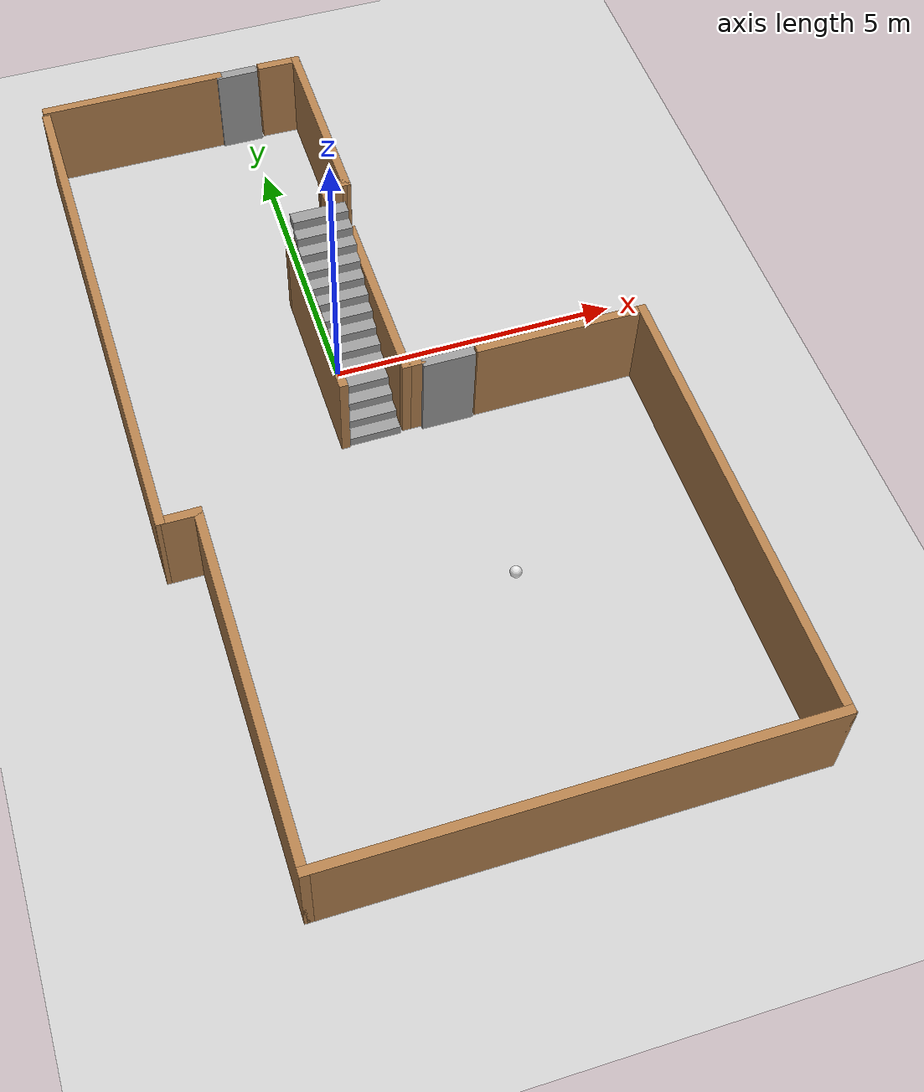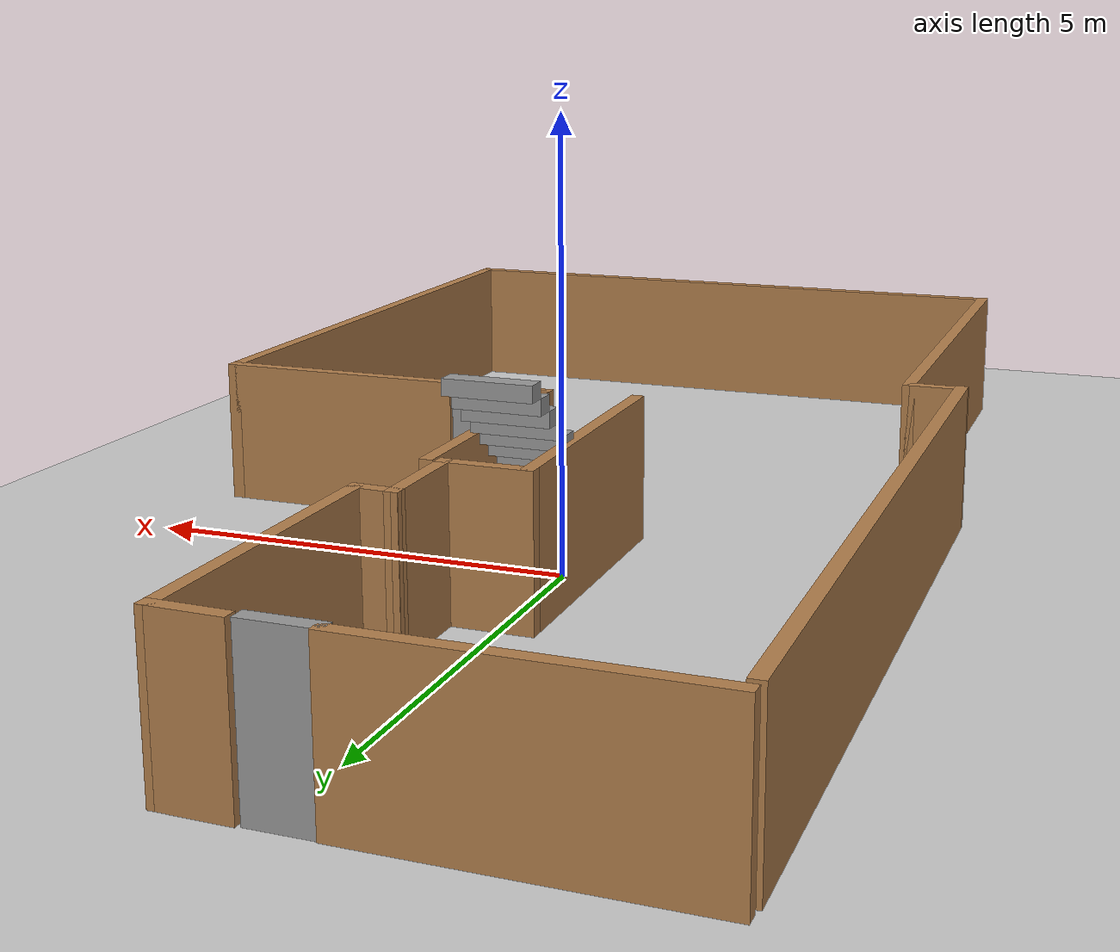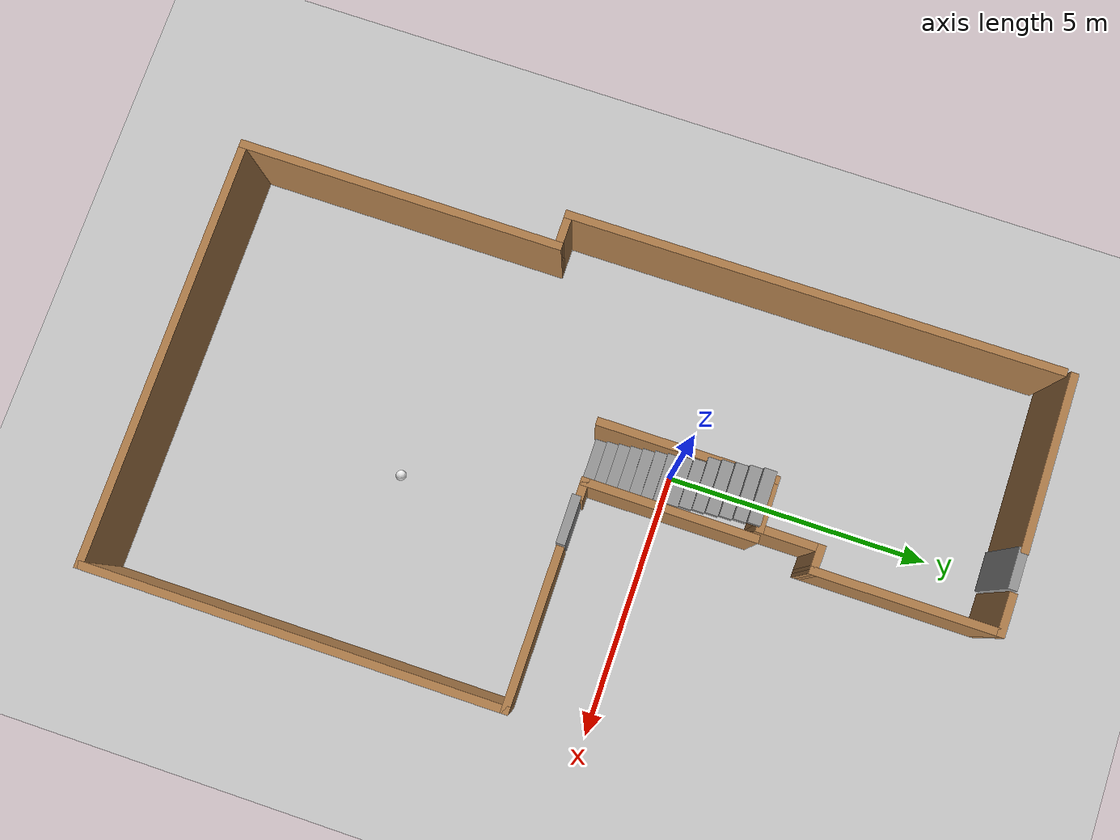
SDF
<sdf version="1.6">
 <world name="default">
  <light name="sun" type="directional">
   <pose>0 0 10 0 -0 0</pose>
   <diffuse>0.8 0.8 0.8 1</diffuse>
   <specular>0.2 0.2 0.2 1</specular>
   <attenuation>
    <range>1000</range>
    <constant>0.9</constant>
    <linear>0.01</linear>
    <quadratic>0.001</quadratic>
   </attenuation>
   <direction>-0.5 0.1 -0.9</direction>
  </light>
  <model name="ground_plane">
   <static>1</static>
   <link name="link">
    <collision name="collision">
     <geometry><plane><normal>0 0 1</normal><size>100 100</size></plane></geometry>
     <surface><friction><ode><mu>100</mu><mu2>50</mu2></ode></friction></surface>
    </collision>
    <visual name="visual">
     <cast_shadows>0</cast_shadows>
     <geometry><plane><normal>0 0 1</normal><size>100 100</size></plane></geometry>
     <material>
      <script><uri>file://media/materials/scripts/gazebo.material</uri><name>Gazebo/Grey</name></script>
     </material>
    </visual>
   </link>
  </model>
  <gravity>0 0 -9.8</gravity>
  <magnetic_field>6e-06 2.3e-05 -4.2e-05</magnetic_field>
  <atmosphere type="adiabatic"/>
  <physics name="default_physics" default="0" type="ode">
   <max_step_size>0.001</max_step_size>
   <real_time_factor>1</real_time_factor>
   <real_time_update_rate>1000</real_time_update_rate>
  </physics>
  <scene><ambient>0.4 0.4 0.4 1</ambient><background>0.7 0.7 0.7 1</background><shadows>1</shadows></scene>
  <spherical_coordinates>
   <surface_model>EARTH_WGS84</surface_model>
   <latitude_deg>0</latitude_deg>
   <longitude_deg>0</longitude_deg>
   <elevation>0</elevation>
   <heading_deg>0</heading_deg>
  </spherical_coordinates>
  <model name="fungeon">
   <pose>0.567252 -1.53181 0 0 -0 0</pose>
   <link name="Door_0">
    <collision name="Door_0_Collision">
     <geometry><box><size>0.9 0.17 1.701</size></box></geometry>
     <pose>0 0 0.8505 0 -0 0</pose>
    </collision>
    <visual name="Door_0_Visual">
     <pose>0 0 0.8505 0 -0 0</pose>
     <geometry><box><size>0.9 0.17 1.701</size></box></geometry>
     <material>
      <script><uri>file://media/materials/scripts/gazebo.material</uri><name>Gazebo/Grey</name></script>
     </material>
    </visual>
    <pose>0.912588 0.04964 0 0 -0 0</pose>
   </link>
   <link name="Door_1">
    <collision name="Door_1_Collision">
     <geometry><box><size>0.762 0.17 1.701</size></box></geometry>
     <pose>0 0 0.8505 0 -0 0</pose>
    </collision>
    <visual name="Door_1_Visual">
     <pose>0 0 0.8505 0 -0 0</pose>
     <geometry><box><size>0.762 0.17 1.701</size></box></geometry>
     <material>
      <script><uri>file://media/materials/scripts/gazebo.material</uri><name>Gazebo/Grey</name></script>
     </material>
    </visual>
    <pose>-0.727312 7.65402 0 0 -0 0</pose>
   </link>
   <link name="Stairs_1">
    <visual name="Stairs_1_Visual_0">
     <pose>-0.403299 0.104652 0.089286 0 0 -3.14159</pose>
     <geometry><box><size>0.965 0.2245 0.178571</size></box></geometry>
     <material>
      <script><uri>file://media/materials/scripts/gazebo.material</uri><name>Gazebo/Grey</name></script>
      <ambient>1 1 1 1</ambient>
     </material>
     <meta><layer>0</layer></meta>
    </visual>
    <collision name="Stairs_1_Collision_0">
     <geometry><box><size>0.965 0.2245 0.178571</size></box></geometry>
     <pose>-0.403299 0.104652 0.089286 0 0 -3.14159</pose>
    </collision>
    <visual name="Stairs_1_Visual_1">
     <pose>-0.403299 0.329152 0.267857 0 0 -3.14159</pose>
     <geometry><box><size>0.965 0.2245 0.178571</size></box></geometry>
     <material>
      <script><uri>file://media/materials/scripts/gazebo.material</uri><name>Gazebo/Grey</name></script>
      <ambient>1 1 1 1</ambient>
     </material>
     <meta><layer>0</layer></meta>
    </visual>
    <collision name="Stairs_1_Collision_1">
     <geometry><box><size>0.965 0.2245 0.178571</size></box></geometry>
     <pose>-0.403299 0.329152 0.267857 0 0 -3.14159</pose>
    </collision>
    <visual name="Stairs_1_Visual_2">
     <pose>-0.403299 0.553652 0.446429 0 0 -3.14159</pose>
     <geometry><box><size>0.965 0.2245 0.178571</size></box></geometry>
     <material>
      <script><uri>file://media/materials/scripts/gazebo.material</uri><name>Gazebo/Grey</name></script>
      <ambient>1 1 1 1</ambient>
     </material>
     <meta><layer>0</layer></meta>
    </visual>
    <collision name="Stairs_1_Collision_2">
     <geometry><box><size>0.965 0.2245 0.178571</size></box></geometry>
     <pose>-0.403299 0.553652 0.446429 0 0 -3.14159</pose>
    </collision>
    <visual name="Stairs_1_Visual_3">
     <pose>-0.403299 0.778152 0.625 0 0 -3.14159</pose>
     <geometry><box><size>0.965 0.2245 0.178571</size></box></geometry>
     <material>
      <script><uri>file://media/materials/scripts/gazebo.material</uri><name>Gazebo/Grey</name></script>
      <ambient>1 1 1 1</ambient>
     </material>
     <meta><layer>0</layer></meta>
    </visual>
    <collision name="Stairs_1_Collision_3">
     <geometry><box><size>0.965 0.2245 0.178571</size></box></geometry>
     <pose>-0.403299 0.778152 0.625 0 0 -3.14159</pose>
    </collision>
    <visual name="Stairs_1_Visual_4">
     <pose>-0.403299 1.00265 0.803571 0 0 -3.14159</pose>
     <geometry><box><size>0.965 0.2245 0.178571</size></box></geometry>
     <material>
      <script><uri>file://media/materials/scripts/gazebo.material</uri><name>Gazebo/Grey</name></script>
      <ambient>1 1 1 1</ambient>
     </material>
     <meta><layer>0</layer></meta>
    </visual>
    <collision name="Stairs_1_Collision_4">
     <geometry><box><size>0.965 0.2245 0.178571</size></box></geometry>
     <pose>-0.403299 1.00265 0.803571 0 0 -3.14159</pose>
    </collision>
    <visual name="Stairs_1_Visual_5">
     <pose>-0.403299 1.22715 0.982143 0 0 -3.14159</pose>
     <geometry><box><size>0.965 0.2245 0.178571</size></box></geometry>
     <material>
      <script><uri>file://media/materials/scripts/gazebo.material</uri><name>Gazebo/Grey</name></script>
      <ambient>1 1 1 1</ambient>
     </material>
     <meta><layer>0</layer></meta>
    </visual>
    <collision name="Stairs_1_Collision_5">
     <geometry><box><size>0.965 0.2245 0.178571</size></box></geometry>
     <pose>-0.403299 1.22715 0.982143 0 0 -3.14159</pose>
    </collision>
    <visual name="Stairs_1_Visual_6">
     <pose>-0.403299 1.45165 1.16071 0 0 -3.14159</pose>
     <geometry><box><size>0.965 0.2245 0.178571</size></box></geometry>
     <material>
      <script><uri>file://media/materials/scripts/gazebo.material</uri><name>Gazebo/Grey</name></script>
      <ambient>1 1 1 1</ambient>
     </material>
     <meta><layer>0</layer></meta>
    </visual>
    <collision name="Stairs_1_Collision_6">
     <geometry><box><size>0.965 0.2245 0.178571</size></box></geometry>
     <pose>-0.403299 1.45165 1.16071 0 0 -3.14159</pose>
    </collision>
    <visual name="Stairs_1_Visual_7">
     <pose>-0.403299 1.67615 1.33929 0 0 -3.14159</pose>
     <geometry><box><size>0.965 0.2245 0.178571</size></box></geometry>
     <material>
      <script><uri>file://media/materials/scripts/gazebo.material</uri><name>Gazebo/Grey</name></script>
      <ambient>1 1 1 1</ambient>
     </material>
     <meta><layer>0</layer></meta>
    </visual>
    <collision name="Stairs_1_Collision_7">
     <geometry><box><size>0.965 0.2245 0.178571</size></box></geometry>
     <pose>-0.403299 1.67615 1.33929 0 0 -3.14159</pose>
    </collision>
    <visual name="Stairs_1_Visual_8">
     <pose>-0.403299 1.90065 1.51786 0 0 -3.14159</pose>
     <geometry><box><size>0.965 0.2245 0.178571</size></box></geometry>
     <material>
      <script><uri>file://media/materials/scripts/gazebo.material</uri><name>Gazebo/Grey</name></script>
      <ambient>1 1 1 1</ambient>
     </material>
     <meta><layer>0</layer></meta>
    </visual>
    <collision name="Stairs_1_Collision_8">
     <geometry><box><size>0.965 0.2245 0.178571</size></box></geometry>
     <pose>-0.403299 1.90065 1.51786 0 0 -3.14159</pose>
    </collision>
    <visual name="Stairs_1_Visual_9">
     <pose>-0.403299 2.12515 1.69643 0 0 -3.14159</pose>
     <geometry><box><size>0.965 0.2245 0.178571</size></box></geometry>
     <material>
      <script><uri>file://media/materials/scripts/gazebo.material</uri><name>Gazebo/Grey</name></script>
      <ambient>1 1 1 1</ambient>
     </material>
     <meta><layer>0</layer></meta>
    </visual>
    <collision name="Stairs_1_Collision_9">
     <geometry><box><size>0.965 0.2245 0.178571</size></box></geometry>
     <pose>-0.403299 2.12515 1.69643 0 0 -3.14159</pose>
    </collision>
    <visual name="Stairs_1_Visual_10">
     <pose>-0.403299 2.34965 1.875 0 0 -3.14159</pose>
     <geometry><box><size>0.965 0.2245 0.178571</size></box></geometry>
     <material>
      <script><uri>file://media/materials/scripts/gazebo.material</uri><name>Gazebo/Grey</name></script>
      <ambient>1 1 1 1</ambient>
     </material>
     <meta><layer>0</layer></meta>
    </visual>
    <collision name="Stairs_1_Collision_10">
     <geometry><box><size>0.965 0.2245 0.178571</size></box></geometry>
     <pose>-0.403299 2.34965 1.875 0 0 -3.14159</pose>
    </collision>
    <visual name="Stairs_1_Visual_11">
     <pose>-0.403299 2.57415 2.05357 0 0 -3.14159</pose>
     <geometry><box><size>0.965 0.2245 0.178571</size></box></geometry>
     <material>
      <script><uri>file://media/materials/scripts/gazebo.material</uri><name>Gazebo/Grey</name></script>
      <ambient>1 1 1 1</ambient>
     </material>
     <meta><layer>0</layer></meta>
    </visual>
    <collision name="Stairs_1_Collision_11">
     <geometry><box><size>0.965 0.2245 0.178571</size></box></geometry>
     <pose>-0.403299 2.57415 2.05357 0 0 -3.14159</pose>
    </collision>
    <visual name="Stairs_1_Visual_12">
     <pose>-0.403299 2.79865 2.23214 0 0 -3.14159</pose>
     <geometry><box><size>0.965 0.2245 0.178571</size></box></geometry>
     <material>
      <script><uri>file://media/materials/scripts/gazebo.material</uri><name>Gazebo/Grey</name></script>
      <ambient>1 1 1 1</ambient>
     </material>
     <meta><layer>0</layer></meta>
    </visual>
    <collision name="Stairs_1_Collision_12">
     <geometry><box><size>0.965 0.2245 0.178571</size></box></geometry>
     <pose>-0.403299 2.79865 2.23214 0 0 -3.14159</pose>
    </collision>
    <visual name="Stairs_1_Visual_13">
     <pose>-0.403299 3.02315 2.41071 0 0 -3.14159</pose>
     <geometry><box><size>0.965 0.2245 0.178571</size></box></geometry>
     <material>
      <script><uri>file://media/materials/scripts/gazebo.material</uri><name>Gazebo/Grey</name></script>
      <ambient>1 1 1 1</ambient>
     </material>
     <meta><layer>0</layer></meta>
    </visual>
    <collision name="Stairs_1_Collision_13">
     <geometry><box><size>0.965 0.2245 0.178571</size></box></geometry>
     <pose>-0.403299 3.02315 2.41071 0 0 -3.14159</pose>
    </collision>
   </link>
   <link name="Wall_11">
    <collision name="Wall_11_Collision">
     <geometry><box><size>0.75 0.15 1.701</size></box></geometry>
     <pose>0 0 0.8505 0 -0 0</pose>
    </collision>
    <visual name="Wall_11_Visual">
     <pose>0 0 0.8505 0 -0 0</pose>
     <geometry><box><size>0.75 0.15 1.701</size></box></geometry>
     <material>
      <script><uri>file://media/materials/scripts/gazebo.material</uri><name>Gazebo/Wood</name></script>
      <ambient>1 1 1 1</ambient>
     </material>
     <meta><layer>0</layer></meta>
    </visual>
    <pose>-3.98267 -1.68824 0 0 -0 0</pose>
   </link>
   <link name="Wall_14">
    <collision name="Wall_14_Collision">
     <geometry><box><size>6.15 0.15 1.701</size></box></geometry>
     <pose>0 0 0.8505 0 -0 0</pose>
    </collision>
    <visual name="Wall_14_Visual">
     <pose>0 0 0.8505 0 -0 0</pose>
     <geometry><box><size>6.15 0.15 1.701</size></box></geometry>
     <material>
      <script><uri>file://media/materials/scripts/gazebo.material</uri><name>Gazebo/Wood</name></script>
      <ambient>1 1 1 1</ambient>
     </material>
     <meta><layer>0</layer></meta>
    </visual>
    <pose>-3.68267 -4.68824 0 0 0 -1.5708</pose>
   </link>
   <link name="Wall_20">
    <collision name="Wall_20_Collision">
     <geometry><box><size>8.15 0.15 1.701</size></box></geometry>
     <pose>0 0 0.8505 0 -0 0</pose>
    </collision>
    <visual name="Wall_20_Visual">
     <pose>0 0 0.8505 0 -0 0</pose>
     <geometry><box><size>8.15 0.15 1.701</size></box></geometry>
     <material>
      <script><uri>file://media/materials/scripts/gazebo.material</uri><name>Gazebo/Wood</name></script>
      <ambient>1 1 1 1</ambient>
     </material>
     <meta><layer>0</layer></meta>
    </visual>
    <pose>0.31733 -7.68824 0 0 -0 0</pose>
   </link>
   <link name="Wall_26">
    <collision name="Wall_26_Collision">
     <geometry><box><size>7.9 0.15 1.701</size></box></geometry>
     <pose>0 0 0.8505 0 -0 0</pose>
    </collision>
    <visual name="Wall_26_Visual">
     <pose>0 0 0.8505 0 -0 0</pose>
     <geometry><box><size>7.9 0.15 1.701</size></box></geometry>
     <material>
      <script><uri>file://media/materials/scripts/gazebo.material</uri><name>Gazebo/Wood</name></script>
      <ambient>1 1 1 1</ambient>
     </material>
     <meta><layer>0</layer></meta>
    </visual>
    <pose>4.31733 -3.81324 0 0 -0 1.5708</pose>
   </link>
   <link name="Wall_29">
    <collision name="Wall_29_Collision">
     <geometry><box><size>3 0.15 1.701</size></box></geometry>
     <pose>0 0 0.8505 0 -0 0</pose>
    </collision>
    <visual name="Wall_29_Visual">
     <pose>0 0 0.8505 0 -0 0</pose>
     <geometry><box><size>3 0.15 1.701</size></box></geometry>
     <material>
      <script><uri>file://media/materials/scripts/gazebo.material</uri><name>Gazebo/Wood</name></script>
      <ambient>1 1 1 1</ambient>
     </material>
     <meta><layer>0</layer></meta>
    </visual>
    <pose>2.89233 0.061763 0 0 -0 3.14159</pose>
   </link>
   <link name="Wall_34">
    <collision name="Wall_34_Collision">
     <geometry><box><size>0.4 0.15 1.701</size></box></geometry>
     <pose>0 0 0.8505 0 -0 0</pose>
    </collision>
    <visual name="Wall_34_Visual">
     <pose>0 0 0.8505 0 -0 0</pose>
     <geometry><box><size>0.4 0.15 1.701</size></box></geometry>
     <material>
      <script><uri>file://media/materials/scripts/gazebo.material</uri><name>Gazebo/Wood</name></script>
      <ambient>1 1 1 1</ambient>
     </material>
     <meta><layer>0</layer></meta>
    </visual>
    <pose>0.32433 0.102763 0 0 -0 3.14159</pose>
   </link>
   <link name="Wall_37">
    <collision name="Wall_37_Collision">
     <geometry><box><size>3.25 0.15 1.701</size></box></geometry>
     <pose>0 0 0.8505 0 -0 0</pose>
    </collision>
    <visual name="Wall_37_Visual">
     <pose>0 0 0.8505 0 -0 0</pose>
     <geometry><box><size>3.25 0.15 1.701</size></box></geometry>
     <material>
      <script><uri>file://media/materials/scripts/gazebo.material</uri><name>Gazebo/Wood</name></script>
      <ambient>1 1 1 1</ambient>
     </material>
     <meta><layer>0</layer></meta>
    </visual>
    <pose>0.19933 1.65276 0 0 -0 1.5708</pose>
   </link>
   <link name="Wall_39">
    <collision name="Wall_39_Collision">
     <geometry><box><size>3.35 0.15 1.701</size></box></geometry>
     <pose>0 0 0.8505 0 -0 0</pose>
    </collision>
    <visual name="Wall_39_Visual">
     <pose>0 0 0.8505 0 -0 0</pose>
     <geometry><box><size>3.35 0.15 1.701</size></box></geometry>
     <material>
      <script><uri>file://media/materials/scripts/gazebo.material</uri><name>Gazebo/Wood</name></script>
      <ambient>1 1 1 1</ambient>
     </material>
     <meta><layer>0</layer></meta>
    </visual>
    <pose>-0.885608 1.63666 0 0 -0 1.57083</pose>
   </link>
   <link name="Wall_42">
    <collision name="Wall_42_Collision">
     <geometry><box><size>1.05 0.15 1.701</size></box></geometry>
     <pose>0 0 0.8505 0 -0 0</pose>
    </collision>
    <visual name="Wall_42_Visual">
     <pose>0 0 0.8505 0 -0 0</pose>
     <geometry><box><size>1.05 0.15 1.701</size></box></geometry>
     <material>
      <script><uri>file://media/materials/scripts/gazebo.material</uri><name>Gazebo/Wood</name></script>
      <ambient>1 1 1 1</ambient>
     </material>
     <meta><layer>0</layer></meta>
    </visual>
    <pose>-0.43567 3.23676 0 0 -0 0</pose>
   </link>
   <link name="Wall_47">
    <collision name="Wall_47_Collision">
     <geometry><box><size>1.25 0.15 1.701</size></box></geometry>
     <pose>0 0 0.8505 0 -0 0</pose>
    </collision>
    <visual name="Wall_47_Visual">
     <pose>0 0 0.8505 0 -0 0</pose>
     <geometry><box><size>1.25 0.15 1.701</size></box></geometry>
     <material>
      <script><uri>file://media/materials/scripts/gazebo.material</uri><name>Gazebo/Wood</name></script>
      <ambient>1 1 1 1</ambient>
     </material>
     <meta><layer>0</layer></meta>
    </visual>
    <pose>0.01433 3.78676 0 0 -0 1.5708</pose>
   </link>
   <link name="Wall_48">
    <collision name="Wall_48_Collision">
     <geometry><box><size>0.5529 0.15 1.701</size></box></geometry>
     <pose>0 0 0.8505 0 -0 0</pose>
    </collision>
    <visual name="Wall_48_Visual">
     <pose>0 0 0.8505 0 -0 0</pose>
     <geometry><box><size>0.5529 0.15 1.701</size></box></geometry>
     <material>
      <script><uri>file://media/materials/scripts/gazebo.material</uri><name>Gazebo/Wood</name></script>
      <ambient>1 1 1 1</ambient>
     </material>
     <meta><layer>0</layer></meta>
    </visual>
    <pose>0.21583 4.33026 0 0 0 -0.032247</pose>
   </link>
   <link name="Wall_5">
    <collision name="Wall_5_Collision">
     <geometry><box><size>9.31169 0.15 1.708</size></box></geometry>
     <pose>0 0 0.854 0 -0 0</pose>
    </collision>
    <visual name="Wall_5_Visual">
     <pose>0 0 0.854 0 -0 0</pose>
     <geometry><box><size>9.31169 0.15 1.708</size></box></geometry>
     <material>
      <script><uri>file://media/materials/scripts/gazebo.material</uri><name>Gazebo/Wood</name></script>
      <ambient>1 1 1 1</ambient>
     </material>
     <meta><layer>0</layer></meta>
    </visual>
    <pose>-4.29986 2.89257 0 0 0 -1.56704</pose>
   </link>
   <link name="Wall_51">
    <collision name="Wall_51_Collision">
     <geometry><box><size>3.5 0.15 1.701</size></box></geometry>
     <pose>0 0 0.8505 0 -0 0</pose>
    </collision>
    <visual name="Wall_51_Visual">
     <pose>0 0 0.8505 0 -0 0</pose>
     <geometry><box><size>3.5 0.15 1.701</size></box></geometry>
     <material>
      <script><uri>file://media/materials/scripts/gazebo.material</uri><name>Gazebo/Wood</name></script>
      <ambient>1 1 1 1</ambient>
     </material>
     <meta><layer>0</layer></meta>
    </visual>
    <pose>0.41733 5.99876 0 0 -0 1.5708</pose>
   </link>
   <link name="Wall_52">
    <collision name="Wall_52_Collision">
     <geometry><box><size>0.8029 0.15 1.701</size></box></geometry>
     <pose>0 0 0.8505 0 -0 0</pose>
    </collision>
    <visual name="Wall_52_Visual">
     <pose>0 0 0.8505 0 -0 0</pose>
     <geometry><box><size>0.8029 0.15 1.701</size></box></geometry>
     <material>
      <script><uri>file://media/materials/scripts/gazebo.material</uri><name>Gazebo/Wood</name></script>
      <ambient>1 1 1 1</ambient>
     </material>
     <meta><layer>0</layer></meta>
    </visual>
    <pose>0.09083 7.68026 0 0 -0 3.12169</pose>
   </link>
   <link name="Wall_55">
    <collision name="Wall_55_Collision">
     <geometry><box><size>3.35 0.15 1.701</size></box></geometry>
     <pose>0 0 0.8505 0 -0 0</pose>
    </collision>
    <visual name="Wall_55_Visual">
     <pose>0 0 0.8505 0 -0 0</pose>
     <geometry><box><size>3.35 0.15 1.701</size></box></geometry>
     <material>
      <script><uri>file://media/materials/scripts/gazebo.material</uri><name>Gazebo/Wood</name></script>
      <ambient>1 1 1 1</ambient>
     </material>
     <meta><layer>0</layer></meta>
    </visual>
    <pose>-2.68467 7.68076 0 0 -0 3.14159</pose>
   </link>
   <static>1</static>
  </model>
  <model name="my_ball">
   <link name="link_0">
    <inertial>
     <mass>1</mass>
     <inertia><ixx>0.1</ixx><ixy>0</ixy><ixz>0</ixz><iyy>0.1</iyy><iyz>0</iyz><izz>0.1</izz></inertia>
    </inertial>
    <visual name="visual">
     <geometry><sphere><radius>0.1</radius></sphere></geometry>
     <material>
      <lighting>1</lighting>
      <script><uri>file://media/materials/scripts/gazebo.material</uri><name>Gazebo/White</name></script>
      <shader type="pixel"><normal_map>__default__</normal_map></shader>
      <ambient>1 1 1 1</ambient>
      <diffuse>1 1 1 1</diffuse>
      <specular>1 1 1 1</specular>
      <emissive>1 1 1 1</emissive>
     </material>
    </visual>
    <collision name="collision">
     <geometry><sphere><radius>0.1</radius></sphere></geometry>
     <surface>
      <friction>
       <ode><mu>1</mu><mu2>1</mu2><fdir1>0 0 0</fdir1><slip1>0</slip1><slip2>0</slip2></ode>
       <torsional>
        <coefficient>1</coefficient>
        <patch_radius>0</patch_radius>
        <surface_radius>0</surface_radius>
        <use_patch_radius>1</use_patch_radius>
        <ode><slip>0</slip></ode>
       </torsional>
      </friction>
      <bounce><restitution_coefficient>0</restitution_coefficient><threshold>1e+06</threshold></bounce>
      <contact>
       <collide_without_contact>0</collide_without_contact>
       <collide_without_contact_bitmask>1</collide_without_contact_bitmask>
       <collide_bitmask>1</collide_bitmask>
       <ode>
        <soft_cfm>0</soft_cfm>
        <soft_erp>0.2</soft_erp>
        <kp>1e+13</kp>
        <kd>1</kd>
        <max_vel>0.01</max_vel>
        <min_depth>0</min_depth>
       </ode>
       <bullet>
        <split_impulse>1</split_impulse>
        <split_impulse_penetration_threshold>-0.01</split_impulse_penetration_threshold>
        <soft_cfm>0</soft_cfm>
        <soft_erp>0.2</soft_erp>
        <kp>1e+13</kp>
        <kd>1</kd>
       </bullet>
      </contact>
     </surface>
    </collision>
   </link>
   <static>0</static>
   <pose>1.55782 -4.78565 0.125128 0 -0 0</pose>
  </model>
 </world>
</sdf>
